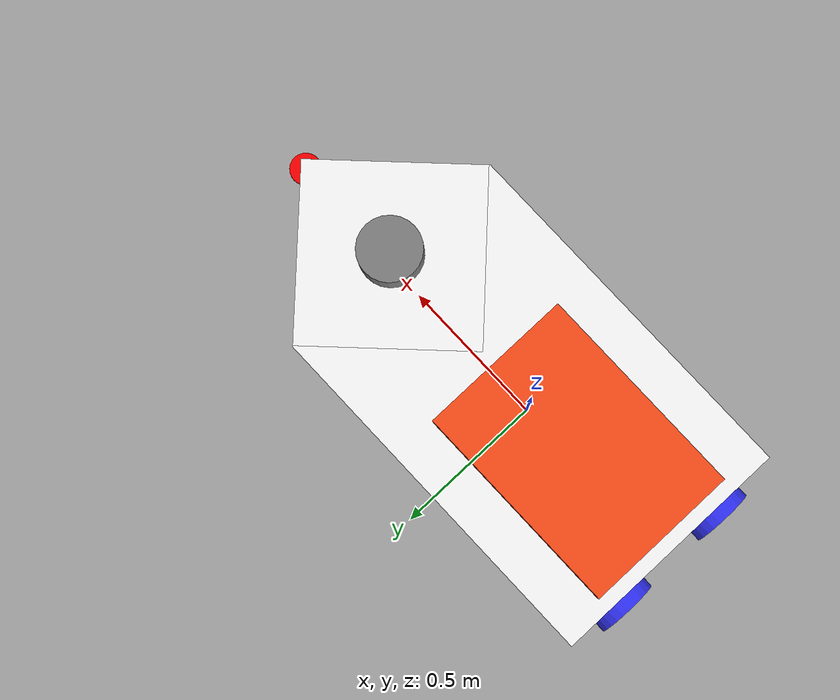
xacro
<?xml version="1.0"?>
<robot xmlns:xacro="http://www.ros.org/wiki/xacro"  name="robot">

    <xacro:include filename="vessel.xacro" />

    <xacro:include filename="3dLidar.xacro" />

    <xacro:include filename="gazebo_control.xacro" />

</robot>

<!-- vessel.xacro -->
<robot xmlns:xacro="http://www.ros.org/wiki/xacro">

    <xacro:macro name="inertial_cylinder" params="mass length radius *origin">
        <inertial>
            <xacro:insert_block name="origin"/>
            <mass value="${mass}" />
            <inertia ixx="${(1/12) * mass * (3*radius*radius + length*length)}" ixy="0.0" ixz="0.0"
                    iyy="${(1/12) * mass * (3*radius*radius + length*length)}" iyz="0.0"
                    izz="${(1/2) * mass * (radius*radius)}" />
        </inertial>
    </xacro:macro>

    <material name="white">
        <color rgba="1 1 1 1" />
    </material>
    <material name="orange">
        <color rgba="1 0.3 0.1 1"/>
    </material>
    <material name="blue">
        <color rgba="0.2 0.2 1 1"/>
    </material>
    <material name="black">
        <color rgba="0 0 0 1"/>
    </material>
    <material name="green">
        <color rgba="0 1 0 1"/>
    </material>
    <material name="red">
        <color rgba="1 0 0 1"/>
    </material>
    <material name="grey">
        <color rgba="0.5 0.5 0.5 1"/>
    </material>

    <link name="base_link">
        <linear_damping>5.0</linear_damping>
        <angular_damping>10.0</angular_damping>
    </link>

    <joint name="base_footprint_joint" type="fixed">
        <parent link="base_link"/>
        <child link="base_footprint"/>
        <origin xyz="0 0 0" rpy="0 0 0"/>
    </joint>

    <link name="base_footprint">
    </link>

    <joint name="vessel_joint" type="fixed">
        <parent link="base_link"/>
        <child link="vessel_core"/>
        <origin xyz="0 0 0" rpy="0 0 0"/>
    </joint>

    <link name="vessel_core">
        <visual name="vessel_core_visual">
            <origin xyz="0 0 0.2" rpy="0 0 0"/>
            <geometry>
                <box size="1.2 0.8 0.3"/>
            </geometry>
            <material name="white"/>
        </visual>
        <collision name="vessel_core_collision">
            <geometry>
                <box size="1.2 0.8 0.3"/>
            </geometry>
            <origin xyz="0 0 0.2"/>
        </collision>
        <inertial>
            <origin xyz="0 0 0.2" rpy="0 0 0"/>
            <mass value="10.0"/>
            <inertia ixx="1.0" ixy="0.0" ixz="0.0"
                    iyy="1.0" iyz="0.0"
                    izz="1.0"/>
        </inertial>

    </link>

    <link name="captain_room">
        <visual>
            <geometry>
                <box size="0.7 0.5 0.25"/>
            </geometry>
            <origin xyz="0 0 0" rpy="0 0 0"/>
            <material name="orange"/>
        </visual>
        <collision>
            <geometry>
                <box size="0.7 0.5 0.25"/>
            </geometry>
            <origin xyz="0 0 0"/>
        </collision>
        <inertial>
            <origin xyz="0 0 0" rpy="0 0 0"/>
            <mass value="1.0"/>
            <inertia ixx="0.1" ixy="0.0" ixz="0.0"
                    iyy="0.1" iyz="0.0"
                    izz="0.1"/>
        </inertial>
    </link>

    <joint name="captain_room_joint" type="fixed">
        <parent link="vessel_core"/>
        <child link="captain_room"/>
        <origin xyz="-0.2 0 0.3" rpy="0 0 0"/>
    </joint>

    <link name="vessel_nose">
        <visual>
            <geometry>
                <box size="0.562 0.562 0.3"/>
            </geometry>
            <origin xyz="0 0 0" rpy="0 0 0.785398"/>
            <material name="white"/>
        </visual>
        <inertial>
            <origin xyz="0 0 0" rpy="0 0 0"/>
            <mass value="1.0"/>
            <inertia ixx="0.1" ixy="0.0" ixz="0.0"
                    iyy="0.1" iyz="0.0"
                    izz="0.1"/>
        </inertial>
    </link>

    <joint name="vessel_nose_joint" type="fixed">
        <parent link="vessel_core"/>
        <child link="vessel_nose"/>
        <origin xyz="0.6 0 0.2" rpy="0 0 0"/>
    </joint>

    <link name="chimney">
        <visual>
            <geometry>
                <cylinder radius="0.1" length="0.3"/>
            </geometry>
            <origin xyz="0 0 0" rpy="0 0 0"/>
            <material name="grey"/>
        </visual>
        <collision>
            <geometry>
                <cylinder radius="0.1" length="0.3"/>
            </geometry>
            <origin xyz="0 0 0"/>
        </collision>
        <inertial>
            <origin xyz="0 0 0" rpy="0 0 0"/>
            <mass value="0.5"/>
            <inertia ixx="0.01" ixy="0.0" ixz="0.0"
                    iyy="0.01" iyz="0.0"
                    izz="0.01"/>
        </inertial>
    </link>

    <joint name="chimney_joint" type="fixed">
        <parent link="vessel_core"/>
        <child link="chimney"/>
        <origin xyz="0.6 0 0.3" rpy="0 0 0"/>
    </joint>

    <joint name="left_wheel_joint" type="continuous">
        <parent link="vessel_core"/>
        <child link="left_wheel"/>
        <origin xyz="-0.5 0.4 0.12" rpy="-${pi/2} 0 0" />
        <axis xyz="0 0 1"/>
        <limit effort="100" velocity="1.0" lower="-0.5" upper="0.5"/>
    </joint>

    <link name="left_wheel">
        <collision>
            <geometry>
                <cylinder radius="0.1" length="0.05"/>
            </geometry>
        </collision>
        <xacro:inertial_cylinder mass="0.2" length="0.05" radius="0.1">
            <origin xyz="0 0 0" rpy="0 0 0"/>
        </xacro:inertial_cylinder>
    </link>

    <joint name="right_wheel_joint" type="continuous">
        <parent link="vessel_core"/>
        <child link="right_wheel"/>
        <origin xyz="-0.5 -0.4 0.12" rpy="${pi/2} 0 0" />
        <axis xyz="0 0 -1"/>
        <limit effort="100" velocity="1.0" lower="-0.5" upper="0.5"/>
    </joint>

    <link name="right_wheel">
        <collision>
            <geometry>
                <cylinder radius="0.1" length="0.05"/>
            </geometry>
        </collision>
        <xacro:inertial_cylinder mass="0.2" length="0.05" radius="0.1">
            <origin xyz="0 0 0" rpy="0 0 0"/>
        </xacro:inertial_cylinder>
    </link>

        <!-- RIGHT PROPELLER -->
    <link name="right_propeller">
        <visual>
            <geometry>
                <cylinder radius="0.1" length="0.1"/>
            </geometry>
            <material name="blue"/>
        </visual>
        <collision>
            <geometry>
                <cylinder radius="0.1" length="0.1"/>
            </geometry>
        </collision>
        <xacro:inertial_cylinder mass="0.2" length="0.1" radius="0.1">
            <origin xyz="0 0 0" rpy="0 0 0"/>
        </xacro:inertial_cylinder>
    </link>

    <joint name="right_propeller_joint" type="fixed">
        <parent link="vessel_core"/>
        <child link="right_propeller"/>
        <origin xyz="-0.6 -0.2 0.14" rpy="1.5708 0 1.5708"/> <!-- Position and rotation of the propeller -->
    </joint>

        <gazebo reference="right_propeller">
            <material>Gazebo/Blue</material>
            <mu1>0.0001</mu1>
            <mu2>0.0001</mu2>
        </gazebo>

    <!-- LEFT PROPELLER -->
    <link name="left_propeller">
        <visual>
            <geometry>
                <cylinder radius="0.1" length="0.1"/>
            </geometry>
            <material name="blue"/>
        </visual>
        <collision>
            <geometry>
                <cylinder radius="0.1" length="0.1"/>
            </geometry>
        </collision>
        <xacro:inertial_cylinder mass="0.2" length="0.1" radius="0.1">
            <origin xyz="0 0 0" rpy="0 0 0"/>
        </xacro:inertial_cylinder>
    </link>

    <joint name="left_propeller_joint" type="fixed">
        <parent link="vessel_core"/>
        <child link="left_propeller"/>
        <origin xyz="-0.6 0.2 0.14" rpy="1.5708 0 1.5708"/> <!-- Position and rotation of the propeller -->
    </joint>

    <gazebo reference="left_propeller">
        <material>Gazebo/Blue</material>
        <mu1>0.0001</mu1>
        <mu2>0.0001</mu2>
    </gazebo>

    <!-- CASTER WHEEL LINK -->
    <joint name="caster_wheel_joint" type="fixed">
        <parent link="vessel_core"/>
        <child link="caster_wheel"/>
        <origin xyz="0.8 0 0.12"/>
    </joint>

    <link name="caster_wheel">
        <collision>
            <geometry>
                <sphere radius="0.1"/>
            </geometry>
        </collision>
        <inertial>
            <origin xyz="0 0 0" rpy="0 0 0"/>
            <mass value="0.1"/>
            <inertia ixx="0.01" ixy="0.0" ixz="0.0"
                    iyy="0.01" iyz="0.0"
                    izz="0.01"/>
        </inertial>
    </link>
    <gazebo reference="vessel_core">
        <material>Gazebo/White</material>
        <mu1>0.0001</mu1>
        <mu2>0.0001</mu2>
    </gazebo>

    <gazebo reference="captain_room">
        <material>Gazebo/Orange</material>
        <mu1>0.0001</mu1>
        <mu2>0.0001</mu2>
    </gazebo>
    <gazebo reference="vessel_nose">
        <material>Gazebo/White</material>
        <mu1>0.0001</mu1>
        <mu2>0.0001</mu2>
    </gazebo>
    <gazebo reference="chimney">
        <material>Gazebo/Grey</material>
        <mu1>0.0001</mu1>
        <mu2>0.0001</mu2>
    </gazebo>

    <gazebo reference="caster_wheel">
        <material>Gazebo/Orange</material>
        <mu1 value = "0.001"/>
        <mu2 value = "0.001"/>
    </gazebo>

</robot>

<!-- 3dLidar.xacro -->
<!-- this is the 3d option of a lidar -->

<robot xmlns:xacro="http://www.ros.org/wiki/xacro" >
    <joint name="laser_joint" type="fixed">
        <parent link="vessel_core"/>
        <child link="laser_frame"/>
        <origin xyz="1 0 0.2" rpy="0 0 0"/>
    </joint>

    <link name="laser_frame">
        <visual>
            <geometry>
                <cylinder radius="0.05" length="0.01"/>
            </geometry>
            <material name="red"/>
        </visual>
        <collision>
            <geometry>
                <cylinder radius="0.05" length="0.01"/>
            </geometry>
        </collision>
        <xacro:inertial_cylinder mass="0.1" length="0.01" radius="0.05">
            <origin xyz="0 0 0" rpy="0 0 0"/>
        </xacro:inertial_cylinder>
    </link>

    <gazebo reference="laser_frame">
        <material>Gazebo/Red</material>
        <mu1>0.1</mu1>
        <mu2>0.1</mu2>
        <self_collide>false</self_collide>
        <sensor name="laser" type="ray">
            <pose> 0 0 0 0 0 0 </pose>
            <visualize>true</visualize>
            <update_rate>10</update_rate>
            <ray>
                <scan>
                    <horizontal>
                        <samples>270</samples>
                        <min_angle>-2.350</min_angle>
                        <max_angle>2.350</max_angle>
                    </horizontal>
                    <vertical>
                        <samples>180</samples> <!-- Add vertical samples for 3D scan -->
                        <min_angle>-1.570</min_angle> <!-- Min vertical angle (-90°) -->
                        <max_angle>1.570</max_angle>  <!-- Max vertical angle (+90°) -->
                    </vertical>
                </scan>
                <range>
                    <min>0.3</min>
                    <max>12</max>
                </range>
            </ray>
            <plugin name="laser_controller" filename="libgazebo_ros_ray_sensor.so">
                <ros>
                    <remapping>~/out:=scan_cloud</remapping>
                </ros>
                <output_type>sensor_msgs/PointCloud2</output_type>
                <frame_name>laser_frame</frame_name>
            </plugin>
        </sensor>
    </gazebo>

</robot>
